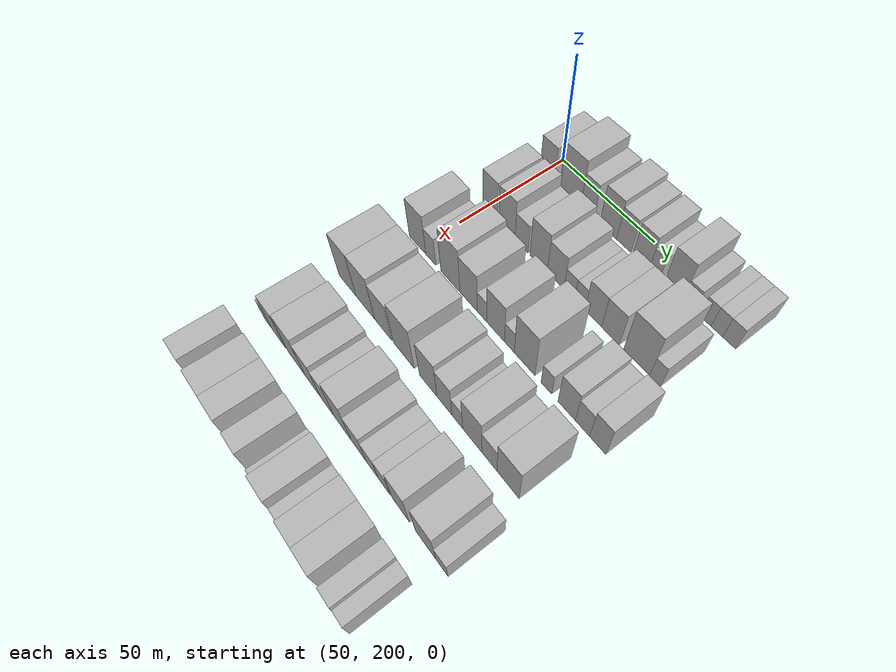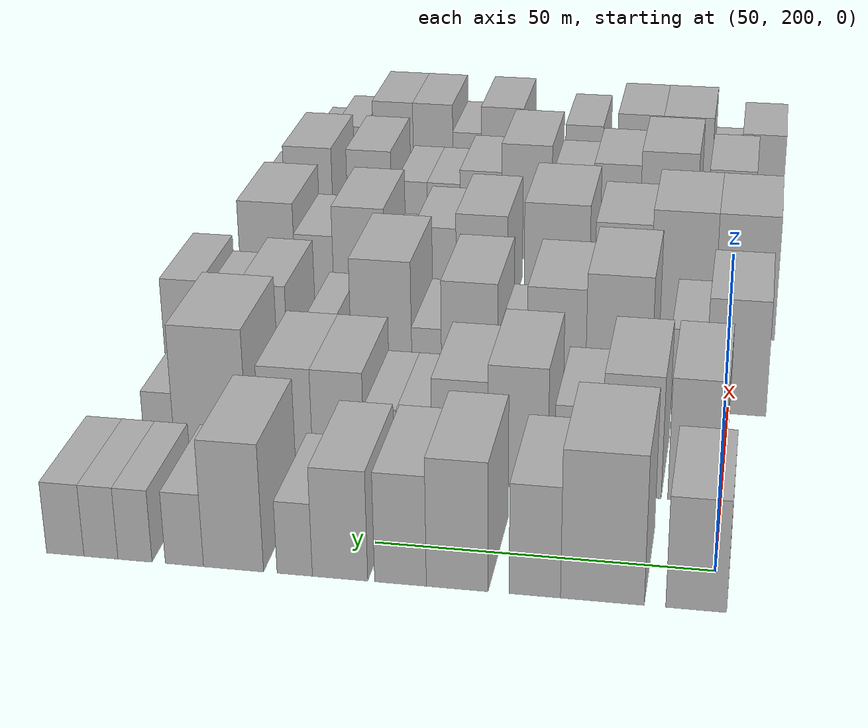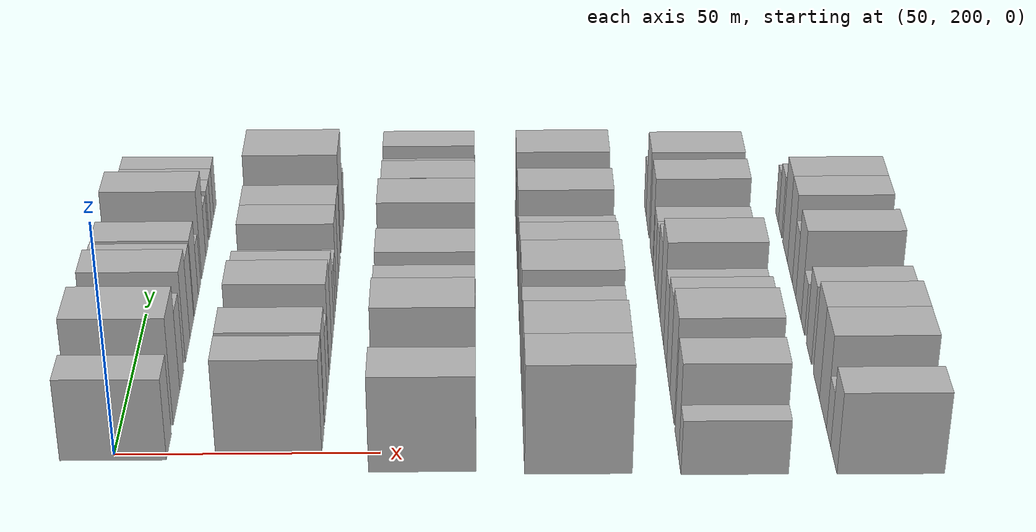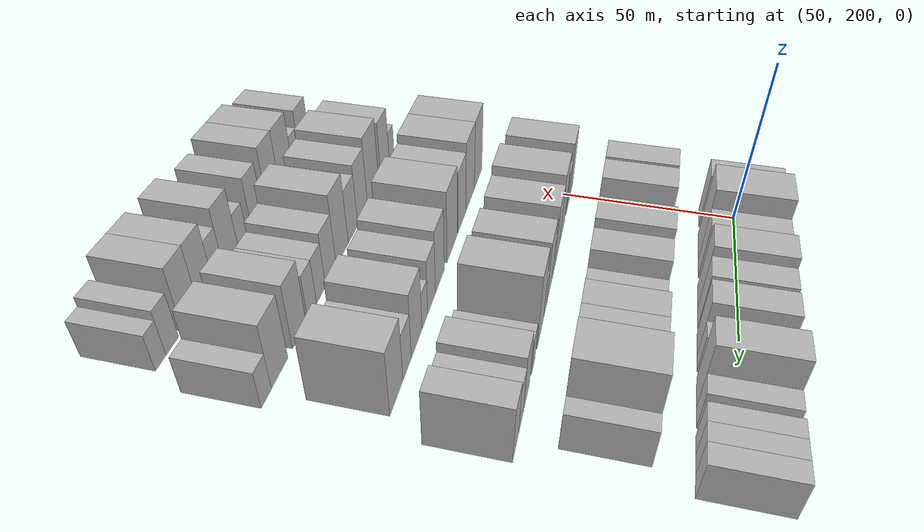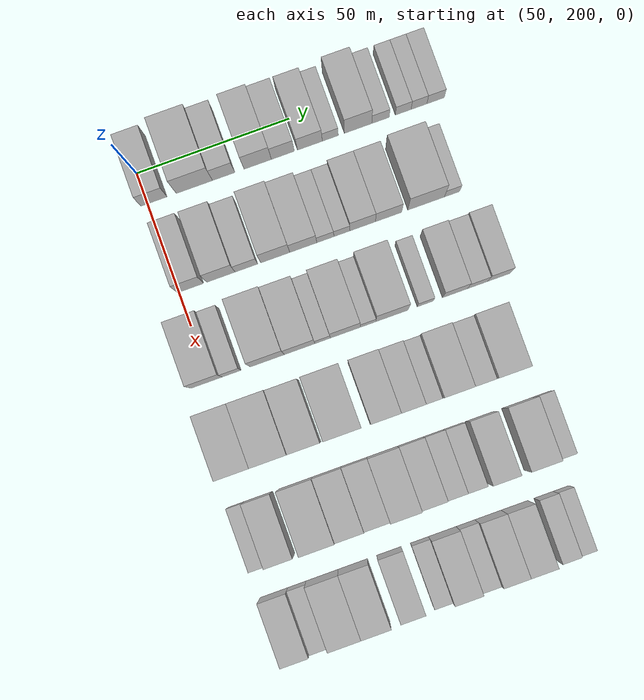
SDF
<sdf version="1.6">
 <world name="default">
  <model name="building_83">
   <static>1</static>
   <pose>50.0000 202.2309 0 0.000000 0.000000 0.000000</pose>
   <link name="link">
    <pose>0 0 9.00 0 0 0</pose>
    <collision name="collision"><geometry><box><size>20.0000 8.4740 18.0000</size></box></geometry></collision>
    <visual name="visual">
     <cast_shadows>0</cast_shadows>
     <geometry><box><size>20.0000 8.4740 18.0000</size></box></geometry>
     <material>
      <script>
       <uri>model://HANNAS_wall/materials/scripts</uri>
       <uri>model://HANNAS_wall/materials/textures</uri>
       <name>vrc/HANNAS_wall</name>
      </script>
     </material>
    </visual>
   </link>
  </model>
  <model name="building_84">
   <static>1</static>
   <pose>50.0000 215.3790 0 0.000000 0.000000 0.000000</pose>
   <link name="link">
    <pose>0 0 12.00 0 0 0</pose>
    <collision name="collision"><geometry><box><size>20.0000 11.8223 24.0000</size></box></geometry></collision>
    <visual name="visual">
     <cast_shadows>0</cast_shadows>
     <geometry><box><size>20.0000 11.8223 24.0000</size></box></geometry>
     <material>
      <script>
       <uri>model://HANNAS_wall/materials/scripts</uri>
       <uri>model://HANNAS_wall/materials/textures</uri>
       <name>vrc/HANNAS_wall</name>
      </script>
     </material>
    </visual>
   </link>
  </model>
  <model name="building_85">
   <static>1</static>
   <pose>50.0000 224.9455 0 0.000000 0.000000 0.000000</pose>
   <link name="link">
    <pose>0 0 9.00 0 0 0</pose>
    <collision name="collision"><geometry><box><size>20.0000 7.3107 18.0000</size></box></geometry></collision>
    <visual name="visual">
     <cast_shadows>0</cast_shadows>
     <geometry><box><size>20.0000 7.3107 18.0000</size></box></geometry>
     <material>
      <script>
       <uri>model://HANNAS_wall/materials/scripts</uri>
       <uri>model://HANNAS_wall/materials/textures</uri>
       <name>vrc/HANNAS_wall</name>
      </script>
     </material>
    </visual>
   </link>
  </model>
  <model name="building_86">
   <static>1</static>
   <pose>50.0000 236.0583 0 0.000000 0.000000 0.000000</pose>
   <link name="link">
    <pose>0 0 10.50 0 0 0</pose>
    <collision name="collision"><geometry><box><size>20.0000 8.9148 21.0000</size></box></geometry></collision>
    <visual name="visual">
     <cast_shadows>0</cast_shadows>
     <geometry><box><size>20.0000 8.9148 21.0000</size></box></geometry>
     <material>
      <script>
       <uri>model://HANNAS_wall/materials/scripts</uri>
       <uri>model://HANNAS_wall/materials/textures</uri>
       <name>vrc/HANNAS_wall</name>
      </script>
     </material>
    </visual>
   </link>
  </model>
  <model name="building_87">
   <static>1</static>
   <pose>50.0000 244.2703 0 0.000000 0.000000 0.000000</pose>
   <link name="link">
    <pose>0 0 9.00 0 0 0</pose>
    <collision name="collision"><geometry><box><size>20.0000 7.5092 18.0000</size></box></geometry></collision>
    <visual name="visual">
     <cast_shadows>0</cast_shadows>
     <geometry><box><size>20.0000 7.5092 18.0000</size></box></geometry>
     <material>
      <script>
       <uri>model://HANNAS_wall/materials/scripts</uri>
       <uri>model://HANNAS_wall/materials/textures</uri>
       <name>vrc/HANNAS_wall</name>
      </script>
     </material>
    </visual>
   </link>
  </model>
  <model name="building_88">
   <static>1</static>
   <pose>50.0000 253.0871 0 0.000000 0.000000 0.000000</pose>
   <link name="link">
    <pose>0 0 9.00 0 0 0</pose>
    <collision name="collision"><geometry><box><size>20.0000 8.1245 18.0000</size></box></geometry></collision>
    <visual name="visual">
     <cast_shadows>0</cast_shadows>
     <geometry><box><size>20.0000 8.1245 18.0000</size></box></geometry>
     <material>
      <script>
       <uri>model://HANNAS_wall/materials/scripts</uri>
       <uri>model://HANNAS_wall/materials/textures</uri>
       <name>vrc/HANNAS_wall</name>
      </script>
     </material>
    </visual>
   </link>
  </model>
  <model name="building_89">
   <static>1</static>
   <pose>50.0000 259.7566 0 0.000000 0.000000 0.000000</pose>
   <link name="link">
    <pose>0 0 6.00 0 0 0</pose>
    <collision name="collision"><geometry><box><size>20.0000 5.2146 12.0000</size></box></geometry></collision>
    <visual name="visual">
     <cast_shadows>0</cast_shadows>
     <geometry><box><size>20.0000 5.2146 12.0000</size></box></geometry>
     <material>
      <script>
       <uri>model://HANNAS_wall/materials/scripts</uri>
       <uri>model://HANNAS_wall/materials/textures</uri>
       <name>vrc/HANNAS_wall</name>
      </script>
     </material>
    </visual>
   </link>
  </model>
  <model name="building_90">
   <static>1</static>
   <pose>50.0000 268.8423 0 0.000000 0.000000 0.000000</pose>
   <link name="link">
    <pose>0 0 10.50 0 0 0</pose>
    <collision name="collision"><geometry><box><size>20.0000 8.9568 21.0000</size></box></geometry></collision>
    <visual name="visual">
     <cast_shadows>0</cast_shadows>
     <geometry><box><size>20.0000 8.9568 21.0000</size></box></geometry>
     <material>
      <script>
       <uri>model://HANNAS_wall/materials/scripts</uri>
       <uri>model://HANNAS_wall/materials/textures</uri>
       <name>vrc/HANNAS_wall</name>
      </script>
     </material>
    </visual>
   </link>
  </model>
  <model name="building_91">
   <static>1</static>
   <pose>50.0000 276.1869 0 0.000000 0.000000 0.000000</pose>
   <link name="link">
    <pose>0 0 6.00 0 0 0</pose>
    <collision name="collision"><geometry><box><size>20.0000 5.7324 12.0000</size></box></geometry></collision>
    <visual name="visual">
     <cast_shadows>0</cast_shadows>
     <geometry><box><size>20.0000 5.7324 12.0000</size></box></geometry>
     <material>
      <script>
       <uri>model://HANNAS_wall/materials/scripts</uri>
       <uri>model://HANNAS_wall/materials/textures</uri>
       <name>vrc/HANNAS_wall</name>
      </script>
     </material>
    </visual>
   </link>
  </model>
  <model name="building_92">
   <static>1</static>
   <pose>50.0000 283.6311 0 0.000000 0.000000 0.000000</pose>
   <link name="link">
    <pose>0 0 6.00 0 0 0</pose>
    <collision name="collision"><geometry><box><size>20.0000 5.1559 12.0000</size></box></geometry></collision>
    <visual name="visual">
     <cast_shadows>0</cast_shadows>
     <geometry><box><size>20.0000 5.1559 12.0000</size></box></geometry>
     <material>
      <script>
       <uri>model://HANNAS_wall/materials/scripts</uri>
       <uri>model://HANNAS_wall/materials/textures</uri>
       <name>vrc/HANNAS_wall</name>
      </script>
     </material>
    </visual>
   </link>
  </model>
  <model name="building_93">
   <static>1</static>
   <pose>50.0000 288.7942 0 0.000000 0.000000 0.000000</pose>
   <link name="link">
    <pose>0 0 6.00 0 0 0</pose>
    <collision name="collision"><geometry><box><size>20.0000 5.1704 12.0000</size></box></geometry></collision>
    <visual name="visual">
     <cast_shadows>0</cast_shadows>
     <geometry><box><size>20.0000 5.1704 12.0000</size></box></geometry>
     <material>
      <script>
       <uri>model://HANNAS_wall/materials/scripts</uri>
       <uri>model://HANNAS_wall/materials/textures</uri>
       <name>vrc/HANNAS_wall</name>
      </script>
     </material>
    </visual>
   </link>
  </model>
  <model name="building_94">
   <static>1</static>
   <pose>50.0000 294.2296 0 0.000000 0.000000 0.000000</pose>
   <link name="link">
    <pose>0 0 6.00 0 0 0</pose>
    <collision name="collision"><geometry><box><size>20.0000 5.7003 12.0000</size></box></geometry></collision>
    <visual name="visual">
     <cast_shadows>0</cast_shadows>
     <geometry><box><size>20.0000 5.7003 12.0000</size></box></geometry>
     <material>
      <script>
       <uri>model://HANNAS_wall/materials/scripts</uri>
       <uri>model://HANNAS_wall/materials/textures</uri>
       <name>vrc/HANNAS_wall</name>
      </script>
     </material>
    </visual>
   </link>
  </model>
  <model name="building_199">
   <static>1</static>
   <pose>79.0000 203.8844 0 0.000000 0.000000 0.000000</pose>
   <link name="link">
    <pose>0 0 10.50 0 0 0</pose>
    <collision name="collision"><geometry><box><size>20.0000 8.4721 21.0000</size></box></geometry></collision>
    <visual name="visual">
     <cast_shadows>0</cast_shadows>
     <geometry><box><size>20.0000 8.4721 21.0000</size></box></geometry>
     <material>
      <script>
       <uri>model://HANNAS_wall/materials/scripts</uri>
       <uri>model://HANNAS_wall/materials/textures</uri>
       <name>vrc/HANNAS_wall</name>
      </script>
     </material>
    </visual>
   </link>
  </model>
  <model name="building_200">
   <static>1</static>
   <pose>79.0000 213.7243 0 0.000000 0.000000 0.000000</pose>
   <link name="link">
    <pose>0 0 10.50 0 0 0</pose>
    <collision name="collision"><geometry><box><size>20.0000 9.2077 21.0000</size></box></geometry></collision>
    <visual name="visual">
     <cast_shadows>0</cast_shadows>
     <geometry><box><size>20.0000 9.2077 21.0000</size></box></geometry>
     <material>
      <script>
       <uri>model://HANNAS_wall/materials/scripts</uri>
       <uri>model://HANNAS_wall/materials/textures</uri>
       <name>vrc/HANNAS_wall</name>
      </script>
     </material>
    </visual>
   </link>
  </model>
  <model name="building_201">
   <static>1</static>
   <pose>79.0000 222.0146 0 0.000000 0.000000 0.000000</pose>
   <link name="link">
    <pose>0 0 7.50 0 0 0</pose>
    <collision name="collision"><geometry><box><size>20.0000 7.3730 15.0000</size></box></geometry></collision>
    <visual name="visual">
     <cast_shadows>0</cast_shadows>
     <geometry><box><size>20.0000 7.3730 15.0000</size></box></geometry>
     <material>
      <script>
       <uri>model://HANNAS_wall/materials/scripts</uri>
       <uri>model://HANNAS_wall/materials/textures</uri>
       <name>vrc/HANNAS_wall</name>
      </script>
     </material>
    </visual>
   </link>
  </model>
  <model name="building_202">
   <static>1</static>
   <pose>79.0000 231.4178 0 0.000000 0.000000 0.000000</pose>
   <link name="link">
    <pose>0 0 10.50 0 0 0</pose>
    <collision name="collision"><geometry><box><size>20.0000 9.4334 21.0000</size></box></geometry></collision>
    <visual name="visual">
     <cast_shadows>0</cast_shadows>
     <geometry><box><size>20.0000 9.4334 21.0000</size></box></geometry>
     <material>
      <script>
       <uri>model://HANNAS_wall/materials/scripts</uri>
       <uri>model://HANNAS_wall/materials/textures</uri>
       <name>vrc/HANNAS_wall</name>
      </script>
     </material>
    </visual>
   </link>
  </model>
  <model name="building_203">
   <static>1</static>
   <pose>79.0000 240.5334 0 0.000000 0.000000 0.000000</pose>
   <link name="link">
    <pose>0 0 9.00 0 0 0</pose>
    <collision name="collision"><geometry><box><size>20.0000 8.7978 18.0000</size></box></geometry></collision>
    <visual name="visual">
     <cast_shadows>0</cast_shadows>
     <geometry><box><size>20.0000 8.7978 18.0000</size></box></geometry>
     <material>
      <script>
       <uri>model://HANNAS_wall/materials/scripts</uri>
       <uri>model://HANNAS_wall/materials/textures</uri>
       <name>vrc/HANNAS_wall</name>
      </script>
     </material>
    </visual>
   </link>
  </model>
  <model name="building_204">
   <static>1</static>
   <pose>79.0000 247.7181 0 0.000000 0.000000 0.000000</pose>
   <link name="link">
    <pose>0 0 6.00 0 0 0</pose>
    <collision name="collision"><geometry><box><size>20.0000 5.5716 12.0000</size></box></geometry></collision>
    <visual name="visual">
     <cast_shadows>0</cast_shadows>
     <geometry><box><size>20.0000 5.5716 12.0000</size></box></geometry>
     <material>
      <script>
       <uri>model://HANNAS_wall/materials/scripts</uri>
       <uri>model://HANNAS_wall/materials/textures</uri>
       <name>vrc/HANNAS_wall</name>
      </script>
     </material>
    </visual>
   </link>
  </model>
  <model name="building_205">
   <static>1</static>
   <pose>79.0000 253.1142 0 0.000000 0.000000 0.000000</pose>
   <link name="link">
    <pose>0 0 6.00 0 0 0</pose>
    <collision name="collision"><geometry><box><size>20.0000 5.2206 12.0000</size></box></geometry></collision>
    <visual name="visual">
     <cast_shadows>0</cast_shadows>
     <geometry><box><size>20.0000 5.2206 12.0000</size></box></geometry>
     <material>
      <script>
       <uri>model://HANNAS_wall/materials/scripts</uri>
       <uri>model://HANNAS_wall/materials/textures</uri>
       <name>vrc/HANNAS_wall</name>
      </script>
     </material>
    </visual>
   </link>
  </model>
  <model name="building_206">
   <static>1</static>
   <pose>79.0000 259.8769 0 0.000000 0.000000 0.000000</pose>
   <link name="link">
    <pose>0 0 9.00 0 0 0</pose>
    <collision name="collision"><geometry><box><size>20.0000 8.3048 18.0000</size></box></geometry></collision>
    <visual name="visual">
     <cast_shadows>0</cast_shadows>
     <geometry><box><size>20.0000 8.3048 18.0000</size></box></geometry>
     <material>
      <script>
       <uri>model://HANNAS_wall/materials/scripts</uri>
       <uri>model://HANNAS_wall/materials/textures</uri>
       <name>vrc/HANNAS_wall</name>
      </script>
     </material>
    </visual>
   </link>
  </model>
  <model name="building_207">
   <static>1</static>
   <pose>79.0000 268.3175 0 0.000000 0.000000 0.000000</pose>
   <link name="link">
    <pose>0 0 9.00 0 0 0</pose>
    <collision name="collision"><geometry><box><size>20.0000 8.5763 18.0000</size></box></geometry></collision>
    <visual name="visual">
     <cast_shadows>0</cast_shadows>
     <geometry><box><size>20.0000 8.5763 18.0000</size></box></geometry>
     <material>
      <script>
       <uri>model://HANNAS_wall/materials/scripts</uri>
       <uri>model://HANNAS_wall/materials/textures</uri>
       <name>vrc/HANNAS_wall</name>
      </script>
     </material>
    </visual>
   </link>
  </model>
  <model name="building_208">
   <static>1</static>
   <pose>79.0000 280.5867 0 0.000000 0.000000 0.000000</pose>
   <link name="link">
    <pose>0 0 12.00 0 0 0</pose>
    <collision name="collision"><geometry><box><size>20.0000 11.9622 24.0000</size></box></geometry></collision>
    <visual name="visual">
     <cast_shadows>0</cast_shadows>
     <geometry><box><size>20.0000 11.9622 24.0000</size></box></geometry>
     <material>
      <script>
       <uri>model://HANNAS_wall/materials/scripts</uri>
       <uri>model://HANNAS_wall/materials/textures</uri>
       <name>vrc/HANNAS_wall</name>
      </script>
     </material>
    </visual>
   </link>
  </model>
  <model name="building_209">
   <static>1</static>
   <pose>79.0000 289.0436 0 0.000000 0.000000 0.000000</pose>
   <link name="link">
    <pose>0 0 6.00 0 0 0</pose>
    <collision name="collision"><geometry><box><size>20.0000 4.9516 12.0000</size></box></geometry></collision>
    <visual name="visual">
     <cast_shadows>0</cast_shadows>
     <geometry><box><size>20.0000 4.9516 12.0000</size></box></geometry>
     <material>
      <script>
       <uri>model://HANNAS_wall/materials/scripts</uri>
       <uri>model://HANNAS_wall/materials/textures</uri>
       <name>vrc/HANNAS_wall</name>
      </script>
     </material>
    </visual>
   </link>
  </model>
  <model name="building_311">
   <static>1</static>
   <pose>108.0000 198.8016 0 0.000000 0.000000 0.000000</pose>
   <link name="link">
    <pose>0 0 10.50 0 0 0</pose>
    <collision name="collision"><geometry><box><size>20.0000 10.1871 21.0000</size></box></geometry></collision>
    <visual name="visual">
     <cast_shadows>0</cast_shadows>
     <geometry><box><size>20.0000 10.1871 21.0000</size></box></geometry>
     <material>
      <script>
       <uri>model://HANNAS_wall/materials/scripts</uri>
       <uri>model://HANNAS_wall/materials/textures</uri>
       <name>vrc/HANNAS_wall</name>
      </script>
     </material>
    </visual>
   </link>
  </model>
  <model name="building_312">
   <static>1</static>
   <pose>108.0000 206.9121 0 0.000000 0.000000 0.000000</pose>
   <link name="link">
    <pose>0 0 7.50 0 0 0</pose>
    <collision name="collision"><geometry><box><size>20.0000 6.0339 15.0000</size></box></geometry></collision>
    <visual name="visual">
     <cast_shadows>0</cast_shadows>
     <geometry><box><size>20.0000 6.0339 15.0000</size></box></geometry>
     <material>
      <script>
       <uri>model://HANNAS_wall/materials/scripts</uri>
       <uri>model://HANNAS_wall/materials/textures</uri>
       <name>vrc/HANNAS_wall</name>
      </script>
     </material>
    </visual>
   </link>
  </model>
  <model name="building_313">
   <static>1</static>
   <pose>108.0000 218.4613 0 0.000000 0.000000 0.000000</pose>
   <link name="link">
    <pose>0 0 12.00 0 0 0</pose>
    <collision name="collision"><geometry><box><size>20.0000 11.0647 24.0000</size></box></geometry></collision>
    <visual name="visual">
     <cast_shadows>0</cast_shadows>
     <geometry><box><size>20.0000 11.0647 24.0000</size></box></geometry>
     <material>
      <script>
       <uri>model://HANNAS_wall/materials/scripts</uri>
       <uri>model://HANNAS_wall/materials/textures</uri>
       <name>vrc/HANNAS_wall</name>
      </script>
     </material>
    </visual>
   </link>
  </model>
  <model name="building_314">
   <static>1</static>
   <pose>108.0000 228.9462 0 0.000000 0.000000 0.000000</pose>
   <link name="link">
    <pose>0 0 10.50 0 0 0</pose>
    <collision name="collision"><geometry><box><size>20.0000 9.9051 21.0000</size></box></geometry></collision>
    <visual name="visual">
     <cast_shadows>0</cast_shadows>
     <geometry><box><size>20.0000 9.9051 21.0000</size></box></geometry>
     <material>
      <script>
       <uri>model://HANNAS_wall/materials/scripts</uri>
       <uri>model://HANNAS_wall/materials/textures</uri>
       <name>vrc/HANNAS_wall</name>
      </script>
     </material>
    </visual>
   </link>
  </model>
  <model name="building_315">
   <static>1</static>
   <pose>108.0000 236.3885 0 0.000000 0.000000 0.000000</pose>
   <link name="link">
    <pose>0 0 6.00 0 0 0</pose>
    <collision name="collision"><geometry><box><size>20.0000 4.9794 12.0000</size></box></geometry></collision>
    <visual name="visual">
     <cast_shadows>0</cast_shadows>
     <geometry><box><size>20.0000 4.9794 12.0000</size></box></geometry>
     <material>
      <script>
       <uri>model://HANNAS_wall/materials/scripts</uri>
       <uri>model://HANNAS_wall/materials/textures</uri>
       <name>vrc/HANNAS_wall</name>
      </script>
     </material>
    </visual>
   </link>
  </model>
  <model name="building_316">
   <static>1</static>
   <pose>108.0000 243.7043 0 0.000000 0.000000 0.000000</pose>
   <link name="link">
    <pose>0 0 10.50 0 0 0</pose>
    <collision name="collision"><geometry><box><size>20.0000 9.6523 21.0000</size></box></geometry></collision>
    <visual name="visual">
     <cast_shadows>0</cast_shadows>
     <geometry><box><size>20.0000 9.6523 21.0000</size></box></geometry>
     <material>
      <script>
       <uri>model://HANNAS_wall/materials/scripts</uri>
       <uri>model://HANNAS_wall/materials/textures</uri>
       <name>vrc/HANNAS_wall</name>
      </script>
     </material>
    </visual>
   </link>
  </model>
  <model name="building_317">
   <static>1</static>
   <pose>108.0000 251.0867 0 0.000000 0.000000 0.000000</pose>
   <link name="link">
    <pose>0 0 6.00 0 0 0</pose>
    <collision name="collision"><geometry><box><size>20.0000 5.1126 12.0000</size></box></geometry></collision>
    <visual name="visual">
     <cast_shadows>0</cast_shadows>
     <geometry><box><size>20.0000 5.1126 12.0000</size></box></geometry>
     <material>
      <script>
       <uri>model://HANNAS_wall/materials/scripts</uri>
       <uri>model://HANNAS_wall/materials/textures</uri>
       <name>vrc/HANNAS_wall</name>
      </script>
     </material>
    </visual>
   </link>
  </model>
  <model name="building_318">
   <static>1</static>
   <pose>108.0000 258.8932 0 0.000000 0.000000 0.000000</pose>
   <link name="link">
    <pose>0 0 12.00 0 0 0</pose>
    <collision name="collision"><geometry><box><size>20.0000 10.5003 24.0000</size></box></geometry></collision>
    <visual name="visual">
     <cast_shadows>0</cast_shadows>
     <geometry><box><size>20.0000 10.5003 24.0000</size></box></geometry>
     <material>
      <script>
       <uri>model://HANNAS_wall/materials/scripts</uri>
       <uri>model://HANNAS_wall/materials/textures</uri>
       <name>vrc/HANNAS_wall</name>
      </script>
     </material>
    </visual>
   </link>
  </model>
  <model name="building_319">
   <static>1</static>
   <pose>108.0000 269.7449 0 0.000000 0.000000 0.000000</pose>
   <link name="link">
    <pose>0 0 6.00 0 0 0</pose>
    <collision name="collision"><geometry><box><size>20.0000 5.2031 12.0000</size></box></geometry></collision>
    <visual name="visual">
     <cast_shadows>0</cast_shadows>
     <geometry><box><size>20.0000 5.2031 12.0000</size></box></geometry>
     <material>
      <script>
       <uri>model://HANNAS_wall/materials/scripts</uri>
       <uri>model://HANNAS_wall/materials/textures</uri>
       <name>vrc/HANNAS_wall</name>
      </script>
     </material>
    </visual>
   </link>
  </model>
  <model name="building_320">
   <static>1</static>
   <pose>108.0000 279.4192 0 0.000000 0.000000 0.000000</pose>
   <link name="link">
    <pose>0 0 9.00 0 0 0</pose>
    <collision name="collision"><geometry><box><size>20.0000 8.1454 18.0000</size></box></geometry></collision>
    <visual name="visual">
     <cast_shadows>0</cast_shadows>
     <geometry><box><size>20.0000 8.1454 18.0000</size></box></geometry>
     <material>
      <script>
       <uri>model://HANNAS_wall/materials/scripts</uri>
       <uri>model://HANNAS_wall/materials/textures</uri>
       <name>vrc/HANNAS_wall</name>
      </script>
     </material>
    </visual>
   </link>
  </model>
  <model name="building_321">
   <static>1</static>
   <pose>108.0000 286.7677 0 0.000000 0.000000 0.000000</pose>
   <link name="link">
    <pose>0 0 7.50 0 0 0</pose>
    <collision name="collision"><geometry><box><size>20.0000 6.5517 15.0000</size></box></geometry></collision>
    <visual name="visual">
     <cast_shadows>0</cast_shadows>
     <geometry><box><size>20.0000 6.5517 15.0000</size></box></geometry>
     <material>
      <script>
       <uri>model://HANNAS_wall/materials/scripts</uri>
       <uri>model://HANNAS_wall/materials/textures</uri>
       <name>vrc/HANNAS_wall</name>
      </script>
     </material>
    </visual>
   </link>
  </model>
  <model name="building_322">
   <static>1</static>
   <pose>108.0000 293.6547 0 0.000000 0.000000 0.000000</pose>
   <link name="link">
    <pose>0 0 9.00 0 0 0</pose>
    <collision name="collision"><geometry><box><size>20.0000 7.2223 18.0000</size></box></geometry></collision>
    <visual name="visual">
     <cast_shadows>0</cast_shadows>
     <geometry><box><size>20.0000 7.2223 18.0000</size></box></geometry>
     <material>
      <script>
       <uri>model://HANNAS_wall/materials/scripts</uri>
       <uri>model://HANNAS_wall/materials/textures</uri>
       <name>vrc/HANNAS_wall</name>
      </script>
     </material>
    </visual>
   </link>
  </model>
  <model name="building_428">
   <static>1</static>
   <pose>137.0000 198.1981 0 0.000000 0.000000 0.000000</pose>
   <link name="link">
    <pose>0 0 12.00 0 0 0</pose>
    <collision name="collision"><geometry><box><size>20.0000 10.9164 24.0000</size></box></geometry></collision>
    <visual name="visual">
     <cast_shadows>0</cast_shadows>
     <geometry><box><size>20.0000 10.9164 24.0000</size></box></geometry>
     <material>
      <script>
       <uri>model://HANNAS_wall/materials/scripts</uri>
       <uri>model://HANNAS_wall/materials/textures</uri>
       <name>vrc/HANNAS_wall</name>
      </script>
     </material>
    </visual>
   </link>
  </model>
  <model name="building_429">
   <static>1</static>
   <pose>137.0000 209.4515 0 0.000000 0.000000 0.000000</pose>
   <link name="link">
    <pose>0 0 12.00 0 0 0</pose>
    <collision name="collision"><geometry><box><size>20.0000 11.5904 24.0000</size></box></geometry></collision>
    <visual name="visual">
     <cast_shadows>0</cast_shadows>
     <geometry><box><size>20.0000 11.5904 24.0000</size></box></geometry>
     <material>
      <script>
       <uri>model://HANNAS_wall/materials/scripts</uri>
       <uri>model://HANNAS_wall/materials/textures</uri>
       <name>vrc/HANNAS_wall</name>
      </script>
     </material>
    </visual>
   </link>
  </model>
  <model name="building_430">
   <static>1</static>
   <pose>137.0000 220.3529 0 0.000000 0.000000 0.000000</pose>
   <link name="link">
    <pose>0 0 10.50 0 0 0</pose>
    <collision name="collision"><geometry><box><size>20.0000 10.2125 21.0000</size></box></geometry></collision>
    <visual name="visual">
     <cast_shadows>0</cast_shadows>
     <geometry><box><size>20.0000 10.2125 21.0000</size></box></geometry>
     <material>
      <script>
       <uri>model://HANNAS_wall/materials/scripts</uri>
       <uri>model://HANNAS_wall/materials/textures</uri>
       <name>vrc/HANNAS_wall</name>
      </script>
     </material>
    </visual>
   </link>
  </model>
  <model name="building_431">
   <static>1</static>
   <pose>137.0000 232.4087 0 0.000000 0.000000 0.000000</pose>
   <link name="link">
    <pose>0 0 12.00 0 0 0</pose>
    <collision name="collision"><geometry><box><size>20.0000 11.8991 24.0000</size></box></geometry></collision>
    <visual name="visual">
     <cast_shadows>0</cast_shadows>
     <geometry><box><size>20.0000 11.8991 24.0000</size></box></geometry>
     <material>
      <script>
       <uri>model://HANNAS_wall/materials/scripts</uri>
       <uri>model://HANNAS_wall/materials/textures</uri>
       <name>vrc/HANNAS_wall</name>
      </script>
     </material>
    </visual>
   </link>
  </model>
  <model name="building_432">
   <static>1</static>
   <pose>137.0000 246.1318 0 0.000000 0.000000 0.000000</pose>
   <link name="link">
    <pose>0 0 10.50 0 0 0</pose>
    <collision name="collision"><geometry><box><size>20.0000 9.5470 21.0000</size></box></geometry></collision>
    <visual name="visual">
     <cast_shadows>0</cast_shadows>
     <geometry><box><size>20.0000 9.5470 21.0000</size></box></geometry>
     <material>
      <script>
       <uri>model://HANNAS_wall/materials/scripts</uri>
       <uri>model://HANNAS_wall/materials/textures</uri>
       <name>vrc/HANNAS_wall</name>
      </script>
     </material>
    </visual>
   </link>
  </model>
  <model name="building_433">
   <static>1</static>
   <pose>137.0000 254.8321 0 0.000000 0.000000 0.000000</pose>
   <link name="link">
    <pose>0 0 9.00 0 0 0</pose>
    <collision name="collision"><geometry><box><size>20.0000 7.8535 18.0000</size></box></geometry></collision>
    <visual name="visual">
     <cast_shadows>0</cast_shadows>
     <geometry><box><size>20.0000 7.8535 18.0000</size></box></geometry>
     <material>
      <script>
       <uri>model://HANNAS_wall/materials/scripts</uri>
       <uri>model://HANNAS_wall/materials/textures</uri>
       <name>vrc/HANNAS_wall</name>
      </script>
     </material>
    </visual>
   </link>
  </model>
  <model name="building_434">
   <static>1</static>
   <pose>137.0000 261.5103 0 0.000000 0.000000 0.000000</pose>
   <link name="link">
    <pose>0 0 6.00 0 0 0</pose>
    <collision name="collision"><geometry><box><size>20.0000 5.5030 12.0000</size></box></geometry></collision>
    <visual name="visual">
     <cast_shadows>0</cast_shadows>
     <geometry><box><size>20.0000 5.5030 12.0000</size></box></geometry>
     <material>
      <script>
       <uri>model://HANNAS_wall/materials/scripts</uri>
       <uri>model://HANNAS_wall/materials/textures</uri>
       <name>vrc/HANNAS_wall</name>
      </script>
     </material>
    </visual>
   </link>
  </model>
  <model name="building_435">
   <static>1</static>
   <pose>137.0000 269.1037 0 0.000000 0.000000 0.000000</pose>
   <link name="link">
    <pose>0 0 10.50 0 0 0</pose>
    <collision name="collision"><geometry><box><size>20.0000 9.6837 21.0000</size></box></geometry></collision>
    <visual name="visual">
     <cast_shadows>0</cast_shadows>
     <geometry><box><size>20.0000 9.6837 21.0000</size></box></geometry>
     <material>
      <script>
       <uri>model://HANNAS_wall/materials/scripts</uri>
       <uri>model://HANNAS_wall/materials/textures</uri>
       <name>vrc/HANNAS_wall</name>
      </script>
     </material>
    </visual>
   </link>
  </model>
  <model name="building_436">
   <static>1</static>
   <pose>137.0000 277.5820 0 0.000000 0.000000 0.000000</pose>
   <link name="link">
    <pose>0 0 7.50 0 0 0</pose>
    <collision name="collision"><geometry><box><size>20.0000 7.2730 15.0000</size></box></geometry></collision>
    <visual name="visual">
     <cast_shadows>0</cast_shadows>
     <geometry><box><size>20.0000 7.2730 15.0000</size></box></geometry>
     <material>
      <script>
       <uri>model://HANNAS_wall/materials/scripts</uri>
       <uri>model://HANNAS_wall/materials/textures</uri>
       <name>vrc/HANNAS_wall</name>
      </script>
     </material>
    </visual>
   </link>
  </model>
  <model name="building_437">
   <static>1</static>
   <pose>137.0000 286.4320 0 0.000000 0.000000 0.000000</pose>
   <link name="link">
    <pose>0 0 10.50 0 0 0</pose>
    <collision name="collision"><geometry><box><size>20.0000 10.4270 21.0000</size></box></geometry></collision>
    <visual name="visual">
     <cast_shadows>0</cast_shadows>
     <geometry><box><size>20.0000 10.4270 21.0000</size></box></geometry>
     <material>
      <script>
       <uri>model://HANNAS_wall/materials/scripts</uri>
       <uri>model://HANNAS_wall/materials/textures</uri>
       <name>vrc/HANNAS_wall</name>
      </script>
     </material>
    </visual>
   </link>
  </model>
  <model name="building_535">
   <static>1</static>
   <pose>166.0000 194.9210 0 0.000000 0.000000 0.000000</pose>
   <link name="link">
    <pose>0 0 6.00 0 0 0</pose>
    <collision name="collision"><geometry><box><size>20.0000 5.2954 12.0000</size></box></geometry></collision>
    <visual name="visual">
     <cast_shadows>0</cast_shadows>
     <geometry><box><size>20.0000 5.2954 12.0000</size></box></geometry>
     <material>
      <script>
       <uri>model://HANNAS_wall/materials/scripts</uri>
       <uri>model://HANNAS_wall/materials/textures</uri>
       <name>vrc/HANNAS_wall</name>
      </script>
     </material>
    </visual>
   </link>
  </model>
  <model name="building_536">
   <static>1</static>
   <pose>166.0000 202.0649 0 0.000000 0.000000 0.000000</pose>
   <link name="link">
    <pose>0 0 10.50 0 0 0</pose>
    <collision name="collision"><geometry><box><size>20.0000 8.9923 21.0000</size></box></geometry></collision>
    <visual name="visual">
     <cast_shadows>0</cast_shadows>
     <geometry><box><size>20.0000 8.9923 21.0000</size></box></geometry>
     <material>
      <script>
       <uri>model://HANNAS_wall/materials/scripts</uri>
       <uri>model://HANNAS_wall/materials/textures</uri>
       <name>vrc/HANNAS_wall</name>
      </script>
     </material>
    </visual>
   </link>
  </model>
  <model name="building_537">
   <static>1</static>
   <pose>166.0000 214.0686 0 0.000000 0.000000 0.000000</pose>
   <link name="link">
    <pose>0 0 12.00 0 0 0</pose>
    <collision name="collision"><geometry><box><size>20.0000 11.0152 24.0000</size></box></geometry></collision>
    <visual name="visual">
     <cast_shadows>0</cast_shadows>
     <geometry><box><size>20.0000 11.0152 24.0000</size></box></geometry>
     <material>
      <script>
       <uri>model://HANNAS_wall/materials/scripts</uri>
       <uri>model://HANNAS_wall/materials/textures</uri>
       <name>vrc/HANNAS_wall</name>
      </script>
     </material>
    </visual>
   </link>
  </model>
  <model name="building_538">
   <static>1</static>
   <pose>166.0000 224.1385 0 0.000000 0.000000 0.000000</pose>
   <link name="link">
    <pose>0 0 10.50 0 0 0</pose>
    <collision name="collision"><geometry><box><size>20.0000 9.1246 21.0000</size></box></geometry></collision>
    <visual name="visual">
     <cast_shadows>0</cast_shadows>
     <geometry><box><size>20.0000 9.1246 21.0000</size></box></geometry>
     <material>
      <script>
       <uri>model://HANNAS_wall/materials/scripts</uri>
       <uri>model://HANNAS_wall/materials/textures</uri>
       <name>vrc/HANNAS_wall</name>
      </script>
     </material>
    </visual>
   </link>
  </model>
  <model name="building_539">
   <static>1</static>
   <pose>166.0000 232.7916 0 0.000000 0.000000 0.000000</pose>
   <link name="link">
    <pose>0 0 9.00 0 0 0</pose>
    <collision name="collision"><geometry><box><size>20.0000 8.1817 18.0000</size></box></geometry></collision>
    <visual name="visual">
     <cast_shadows>0</cast_shadows>
     <geometry><box><size>20.0000 8.1817 18.0000</size></box></geometry>
     <material>
      <script>
       <uri>model://HANNAS_wall/materials/scripts</uri>
       <uri>model://HANNAS_wall/materials/textures</uri>
       <name>vrc/HANNAS_wall</name>
      </script>
     </material>
    </visual>
   </link>
  </model>
  <model name="building_540">
   <static>1</static>
   <pose>166.0000 241.8125 0 0.000000 0.000000 0.000000</pose>
   <link name="link">
    <pose>0 0 12.00 0 0 0</pose>
    <collision name="collision"><geometry><box><size>20.0000 9.8600 24.0000</size></box></geometry></collision>
    <visual name="visual">
     <cast_shadows>0</cast_shadows>
     <geometry><box><size>20.0000 9.8600 24.0000</size></box></geometry>
     <material>
      <script>
       <uri>model://HANNAS_wall/materials/scripts</uri>
       <uri>model://HANNAS_wall/materials/textures</uri>
       <name>vrc/HANNAS_wall</name>
      </script>
     </material>
    </visual>
   </link>
  </model>
  <model name="building_541">
   <static>1</static>
   <pose>166.0000 250.8928 0 0.000000 0.000000 0.000000</pose>
   <link name="link">
    <pose>0 0 9.00 0 0 0</pose>
    <collision name="collision"><geometry><box><size>20.0000 8.3007 18.0000</size></box></geometry></collision>
    <visual name="visual">
     <cast_shadows>0</cast_shadows>
     <geometry><box><size>20.0000 8.3007 18.0000</size></box></geometry>
     <material>
      <script>
       <uri>model://HANNAS_wall/materials/scripts</uri>
       <uri>model://HANNAS_wall/materials/textures</uri>
       <name>vrc/HANNAS_wall</name>
      </script>
     </material>
    </visual>
   </link>
  </model>
  <model name="building_542">
   <static>1</static>
   <pose>166.0000 258.3120 0 0.000000 0.000000 0.000000</pose>
   <link name="link">
    <pose>0 0 7.50 0 0 0</pose>
    <collision name="collision"><geometry><box><size>20.0000 6.5376 15.0000</size></box></geometry></collision>
    <visual name="visual">
     <cast_shadows>0</cast_shadows>
     <geometry><box><size>20.0000 6.5376 15.0000</size></box></geometry>
     <material>
      <script>
       <uri>model://HANNAS_wall/materials/scripts</uri>
       <uri>model://HANNAS_wall/materials/textures</uri>
       <name>vrc/HANNAS_wall</name>
      </script>
     </material>
    </visual>
   </link>
  </model>
  <model name="building_543">
   <static>1</static>
   <pose>166.0000 264.6928 0 0.000000 0.000000 0.000000</pose>
   <link name="link">
    <pose>0 0 7.50 0 0 0</pose>
    <collision name="collision"><geometry><box><size>20.0000 6.2241 15.0000</size></box></geometry></collision>
    <visual name="visual">
     <cast_shadows>0</cast_shadows>
     <geometry><box><size>20.0000 6.2241 15.0000</size></box></geometry>
     <material>
      <script>
       <uri>model://HANNAS_wall/materials/scripts</uri>
       <uri>model://HANNAS_wall/materials/textures</uri>
       <name>vrc/HANNAS_wall</name>
      </script>
     </material>
    </visual>
   </link>
  </model>
  <model name="building_544">
   <static>1</static>
   <pose>166.0000 273.2576 0 0.000000 0.000000 0.000000</pose>
   <link name="link">
    <pose>0 0 10.50 0 0 0</pose>
    <collision name="collision"><geometry><box><size>20.0000 8.9055 21.0000</size></box></geometry></collision>
    <visual name="visual">
     <cast_shadows>0</cast_shadows>
     <geometry><box><size>20.0000 8.9055 21.0000</size></box></geometry>
     <material>
      <script>
       <uri>model://HANNAS_wall/materials/scripts</uri>
       <uri>model://HANNAS_wall/materials/textures</uri>
       <name>vrc/HANNAS_wall</name>
      </script>
     </material>
    </visual>
   </link>
  </model>
  <model name="building_545">
   <static>1</static>
   <pose>166.0000 285.6047 0 0.000000 0.000000 0.000000</pose>
   <link name="link">
    <pose>0 0 10.50 0 0 0</pose>
    <collision name="collision"><geometry><box><size>20.0000 9.7887 21.0000</size></box></geometry></collision>
    <visual name="visual">
     <cast_shadows>0</cast_shadows>
     <geometry><box><size>20.0000 9.7887 21.0000</size></box></geometry>
     <material>
      <script>
       <uri>model://HANNAS_wall/materials/scripts</uri>
       <uri>model://HANNAS_wall/materials/textures</uri>
       <name>vrc/HANNAS_wall</name>
      </script>
     </material>
    </visual>
   </link>
  </model>
  <model name="building_546">
   <static>1</static>
   <pose>166.0000 293.4021 0 0.000000 0.000000 0.000000</pose>
   <link name="link">
    <pose>0 0 6.00 0 0 0</pose>
    <collision name="collision"><geometry><box><size>20.0000 5.8061 12.0000</size></box></geometry></collision>
    <visual name="visual">
     <cast_shadows>0</cast_shadows>
     <geometry><box><size>20.0000 5.8061 12.0000</size></box></geometry>
     <material>
      <script>
       <uri>model://HANNAS_wall/materials/scripts</uri>
       <uri>model://HANNAS_wall/materials/textures</uri>
       <name>vrc/HANNAS_wall</name>
      </script>
     </material>
    </visual>
   </link>
  </model>
  <model name="building_654">
   <static>1</static>
   <pose>195.0000 196.5701 0 0.000000 0.000000 0.000000</pose>
   <link name="link">
    <pose>0 0 9.00 0 0 0</pose>
    <collision name="collision"><geometry><box><size>20.0000 8.8895 18.0000</size></box></geometry></collision>
    <visual name="visual">
     <cast_shadows>0</cast_shadows>
     <geometry><box><size>20.0000 8.8895 18.0000</size></box></geometry>
     <material>
      <script>
       <uri>model://HANNAS_wall/materials/scripts</uri>
       <uri>model://HANNAS_wall/materials/textures</uri>
       <name>vrc/HANNAS_wall</name>
      </script>
     </material>
    </visual>
   </link>
  </model>
  <model name="building_655">
   <static>1</static>
   <pose>195.0000 203.9716 0 0.000000 0.000000 0.000000</pose>
   <link name="link">
    <pose>0 0 6.00 0 0 0</pose>
    <collision name="collision"><geometry><box><size>20.0000 5.9135 12.0000</size></box></geometry></collision>
    <visual name="visual">
     <cast_shadows>0</cast_shadows>
     <geometry><box><size>20.0000 5.9135 12.0000</size></box></geometry>
     <material>
      <script>
       <uri>model://HANNAS_wall/materials/scripts</uri>
       <uri>model://HANNAS_wall/materials/textures</uri>
       <name>vrc/HANNAS_wall</name>
      </script>
     </material>
    </visual>
   </link>
  </model>
  <model name="building_656">
   <static>1</static>
   <pose>195.0000 212.1071 0 0.000000 0.000000 0.000000</pose>
   <link name="link">
    <pose>0 0 10.50 0 0 0</pose>
    <collision name="collision"><geometry><box><size>20.0000 10.3576 21.0000</size></box></geometry></collision>
    <visual name="visual">
     <cast_shadows>0</cast_shadows>
     <geometry><box><size>20.0000 10.3576 21.0000</size></box></geometry>
     <material>
      <script>
       <uri>model://HANNAS_wall/materials/scripts</uri>
       <uri>model://HANNAS_wall/materials/textures</uri>
       <name>vrc/HANNAS_wall</name>
      </script>
     </material>
    </visual>
   </link>
  </model>
  <model name="building_657">
   <static>1</static>
   <pose>195.0000 221.9919 0 0.000000 0.000000 0.000000</pose>
   <link name="link">
    <pose>0 0 10.50 0 0 0</pose>
    <collision name="collision"><geometry><box><size>20.0000 9.4120 21.0000</size></box></geometry></collision>
    <visual name="visual">
     <cast_shadows>0</cast_shadows>
     <geometry><box><size>20.0000 9.4120 21.0000</size></box></geometry>
     <material>
      <script>
       <uri>model://HANNAS_wall/materials/scripts</uri>
       <uri>model://HANNAS_wall/materials/textures</uri>
       <name>vrc/HANNAS_wall</name>
      </script>
     </material>
    </visual>
   </link>
  </model>
  <model name="building_658">
   <static>1</static>
   <pose>195.0000 233.6250 0 0.000000 0.000000 0.000000</pose>
   <link name="link">
    <pose>0 0 9.00 0 0 0</pose>
    <collision name="collision"><geometry><box><size>20.0000 7.8542 18.0000</size></box></geometry></collision>
    <visual name="visual">
     <cast_shadows>0</cast_shadows>
     <geometry><box><size>20.0000 7.8542 18.0000</size></box></geometry>
     <material>
      <script>
       <uri>model://HANNAS_wall/materials/scripts</uri>
       <uri>model://HANNAS_wall/materials/textures</uri>
       <name>vrc/HANNAS_wall</name>
      </script>
     </material>
    </visual>
   </link>
  </model>
  <model name="building_659">
   <static>1</static>
   <pose>195.0000 243.4638 0 0.000000 0.000000 0.000000</pose>
   <link name="link">
    <pose>0 0 6.00 0 0 0</pose>
    <collision name="collision"><geometry><box><size>20.0000 5.8234 12.0000</size></box></geometry></collision>
    <visual name="visual">
     <cast_shadows>0</cast_shadows>
     <geometry><box><size>20.0000 5.8234 12.0000</size></box></geometry>
     <material>
      <script>
       <uri>model://HANNAS_wall/materials/scripts</uri>
       <uri>model://HANNAS_wall/materials/textures</uri>
       <name>vrc/HANNAS_wall</name>
      </script>
     </material>
    </visual>
   </link>
  </model>
  <model name="building_660">
   <static>1</static>
   <pose>195.0000 250.8645 0 0.000000 0.000000 0.000000</pose>
   <link name="link">
    <pose>0 0 10.50 0 0 0</pose>
    <collision name="collision"><geometry><box><size>20.0000 8.9780 21.0000</size></box></geometry></collision>
    <visual name="visual">
     <cast_shadows>0</cast_shadows>
     <geometry><box><size>20.0000 8.9780 21.0000</size></box></geometry>
     <material>
      <script>
       <uri>model://HANNAS_wall/materials/scripts</uri>
       <uri>model://HANNAS_wall/materials/textures</uri>
       <name>vrc/HANNAS_wall</name>
      </script>
     </material>
    </visual>
   </link>
  </model>
  <model name="building_661">
   <static>1</static>
   <pose>195.0000 258.4040 0 0.000000 0.000000 0.000000</pose>
   <link name="link">
    <pose>0 0 7.50 0 0 0</pose>
    <collision name="collision"><geometry><box><size>20.0000 6.1009 15.0000</size></box></geometry></collision>
    <visual name="visual">
     <cast_shadows>0</cast_shadows>
     <geometry><box><size>20.0000 6.1009 15.0000</size></box></geometry>
     <material>
      <script>
       <uri>model://HANNAS_wall/materials/scripts</uri>
       <uri>model://HANNAS_wall/materials/textures</uri>
       <name>vrc/HANNAS_wall</name>
      </script>
     </material>
    </visual>
   </link>
  </model>
  <model name="building_662">
   <static>1</static>
   <pose>195.0000 265.6994 0 0.000000 0.000000 0.000000</pose>
   <link name="link">
    <pose>0 0 10.50 0 0 0</pose>
    <collision name="collision"><geometry><box><size>20.0000 8.4898 21.0000</size></box></geometry></collision>
    <visual name="visual">
     <cast_shadows>0</cast_shadows>
     <geometry><box><size>20.0000 8.4898 21.0000</size></box></geometry>
     <material>
      <script>
       <uri>model://HANNAS_wall/materials/scripts</uri>
       <uri>model://HANNAS_wall/materials/textures</uri>
       <name>vrc/HANNAS_wall</name>
      </script>
     </material>
    </visual>
   </link>
  </model>
  <model name="building_663">
   <static>1</static>
   <pose>195.0000 274.2573 0 0.000000 0.000000 0.000000</pose>
   <link name="link">
    <pose>0 0 10.50 0 0 0</pose>
    <collision name="collision"><geometry><box><size>20.0000 8.6260 21.0000</size></box></geometry></collision>
    <visual name="visual">
     <cast_shadows>0</cast_shadows>
     <geometry><box><size>20.0000 8.6260 21.0000</size></box></geometry>
     <material>
      <script>
       <uri>model://HANNAS_wall/materials/scripts</uri>
       <uri>model://HANNAS_wall/materials/textures</uri>
       <name>vrc/HANNAS_wall</name>
      </script>
     </material>
    </visual>
   </link>
  </model>
  <model name="building_664">
   <static>1</static>
   <pose>195.0000 283.6780 0 0.000000 0.000000 0.000000</pose>
   <link name="link">
    <pose>0 0 7.50 0 0 0</pose>
    <collision name="collision"><geometry><box><size>20.0000 6.2155 15.0000</size></box></geometry></collision>
    <visual name="visual">
     <cast_shadows>0</cast_shadows>
     <geometry><box><size>20.0000 6.2155 15.0000</size></box></geometry>
     <material>
      <script>
       <uri>model://HANNAS_wall/materials/scripts</uri>
       <uri>model://HANNAS_wall/materials/textures</uri>
       <name>vrc/HANNAS_wall</name>
      </script>
     </material>
    </visual>
   </link>
  </model>
  <model name="building_665">
   <static>1</static>
   <pose>195.0000 289.3384 0 0.000000 0.000000 0.000000</pose>
   <link name="link">
    <pose>0 0 6.00 0 0 0</pose>
    <collision name="collision"><geometry><box><size>20.0000 5.1052 12.0000</size></box></geometry></collision>
    <visual name="visual">
     <cast_shadows>0</cast_shadows>
     <geometry><box><size>20.0000 5.1052 12.0000</size></box></geometry>
     <material>
      <script>
       <uri>model://HANNAS_wall/materials/scripts</uri>
       <uri>model://HANNAS_wall/materials/textures</uri>
       <name>vrc/HANNAS_wall</name>
      </script>
     </material>
    </visual>
   </link>
  </model>
 </world>
</sdf>
